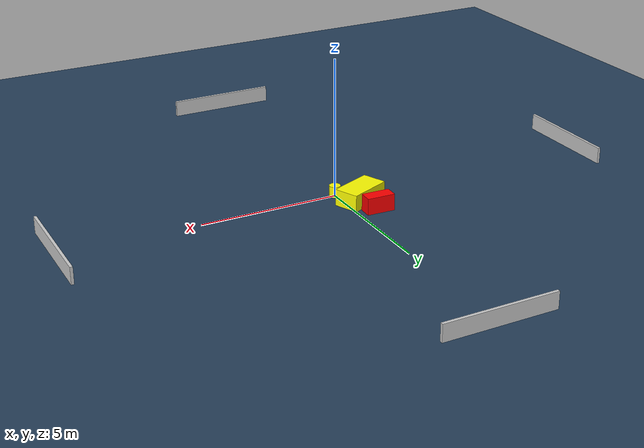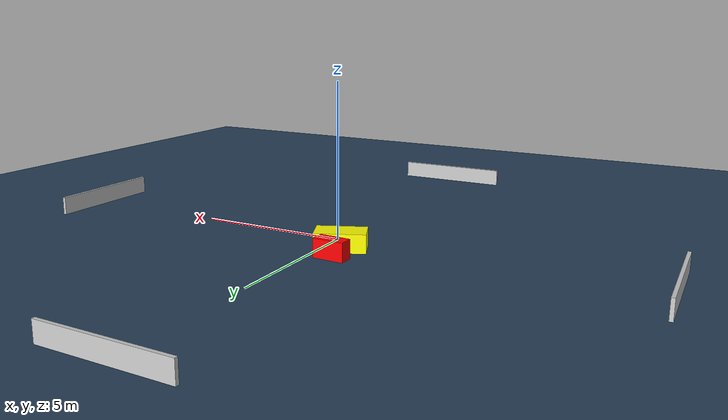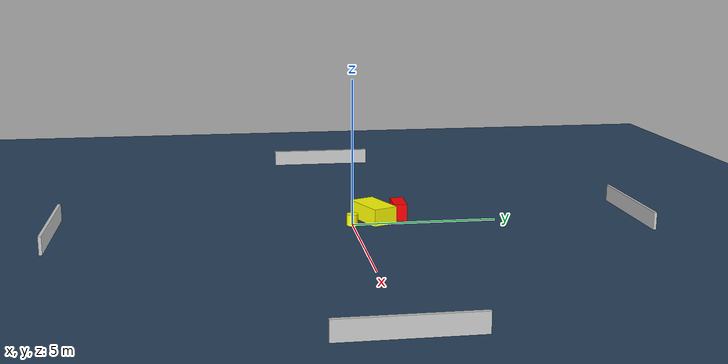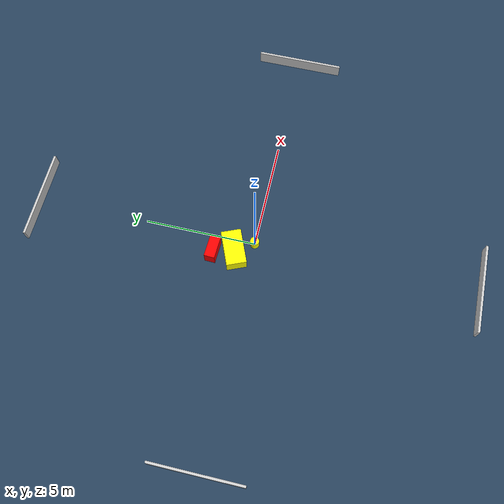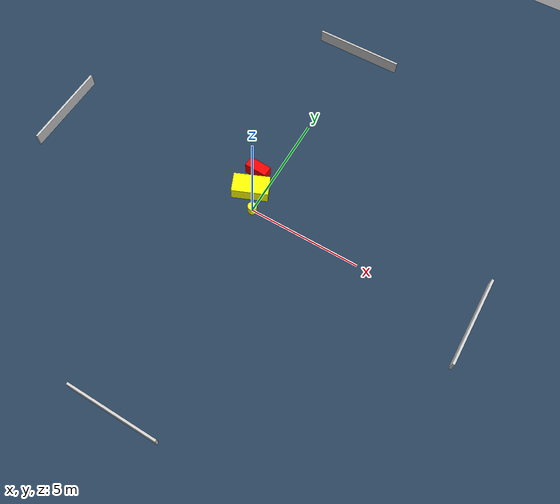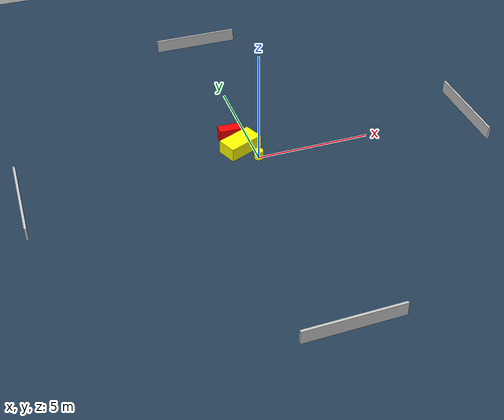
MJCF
<?xml version="1.0" ?>
<mujoco model="generated_environment">
  <option timestep="0.01" integrator="RK4" cone="elliptic"/>
  <default>
    <geom density="1"/>
  </default>
  <asset>
    <texture builtin="gradient" height="3072" name="skybox" rgb1="0.3 0.5 0.7" rgb2="0 0 0" type="skybox" width="512"/>
    <texture builtin="checker" height="300" name="groundplane" rgb1="0.2 0.3 0.4" rgb2="0.1 0.2 0.3" type="2d" width="300"/>
    <material name="groundplane" reflectance="0.2" texrepeat="5 5" texture="groundplane"/>
  </asset>
  <worldbody>
    <light dir="0 0 -1" directional="true" pos="0 0 1.5"/>
    <geom condim="3" friction="0.5 0.005 0.001" material="groundplane" name="floor" pos="0 0 0" size="0 0 0.05" type="plane"/>
    <body name="walls">
      <geom name="wall_1" condim="4" pos="-10.0 0.0 0.3" rgba="0.800000011920929 0.800000011920929 0.800000011920929 1.0" size="0.05 2.0 0.3" type="box"/>
      <geom name="wall_2" condim="4" pos="10.0 0.0 0.3" rgba="0.800000011920929 0.800000011920929 0.800000011920929 1.0" size="0.05 2.0 0.3" type="box"/>
      <geom name="wall_3" condim="4" pos="0.0 -10.0 0.3" rgba="0.800000011920929 0.800000011920929 0.800000011920929 1.0" size="2.0 0.05 0.3" type="box"/>
      <geom name="wall_4" condim="4" pos="0.0 10.0 0.3" rgba="0.800000011920929 0.800000011920929 0.800000011920929 1.0" size="2.0 0.05 0.3" type="box"/>
    </body>
    <body name="robot">
      <joint name="joint_x" type="slide" pos="0 0 0" axis="1 0 0"/>
      <joint name="joint_y" type="slide" pos="0 0 0" axis="0 1 0"/>
      <geom name="robot" type="cylinder" pos="0.0 0.0 0.2" size="0.2 0.2 0.0" mass="5.0" friction="1.0 0.005 0.0001" condim="4" rgba="1.0 1.0 0.0 1.0"/>
    </body>
    <body name="obstacle_1_movable">
      <geom name="obstacle_1_movable" condim="4" pos="-0.5612227961523797 0.8162860498183849 0.3" euler="0 0 293.02627778031035" friction="0.0 0.005 0.001" rgba="1.0 1.0 0.0 1.0" size="0.4452110432204672 0.7973387650723911 0.3" type="box" mass="0.1"/>
      <joint type="free"/>
    </body>
    <body name="obstacle_2_static">
      <geom name="obstacle_2_static" condim="4" pos="-0.7458631998501576 1.731670150219455 0.3" euler="0 0 87.58880601541136" friction="0.0 0.005 0.001" rgba="1.0 0.0 0.0 1.0" size="0.23502645065628563 0.5037763643207565 0.3" type="box"/>
    </body>
  </worldbody>
  <actuator>
    <motor name="actuator_x" joint="joint_x" gear="1" ctrlrange="-1 1"/>
    <motor name="actuator_y" joint="joint_y" gear="1" ctrlrange="-1 1"/>
  </actuator>
</mujoco>
